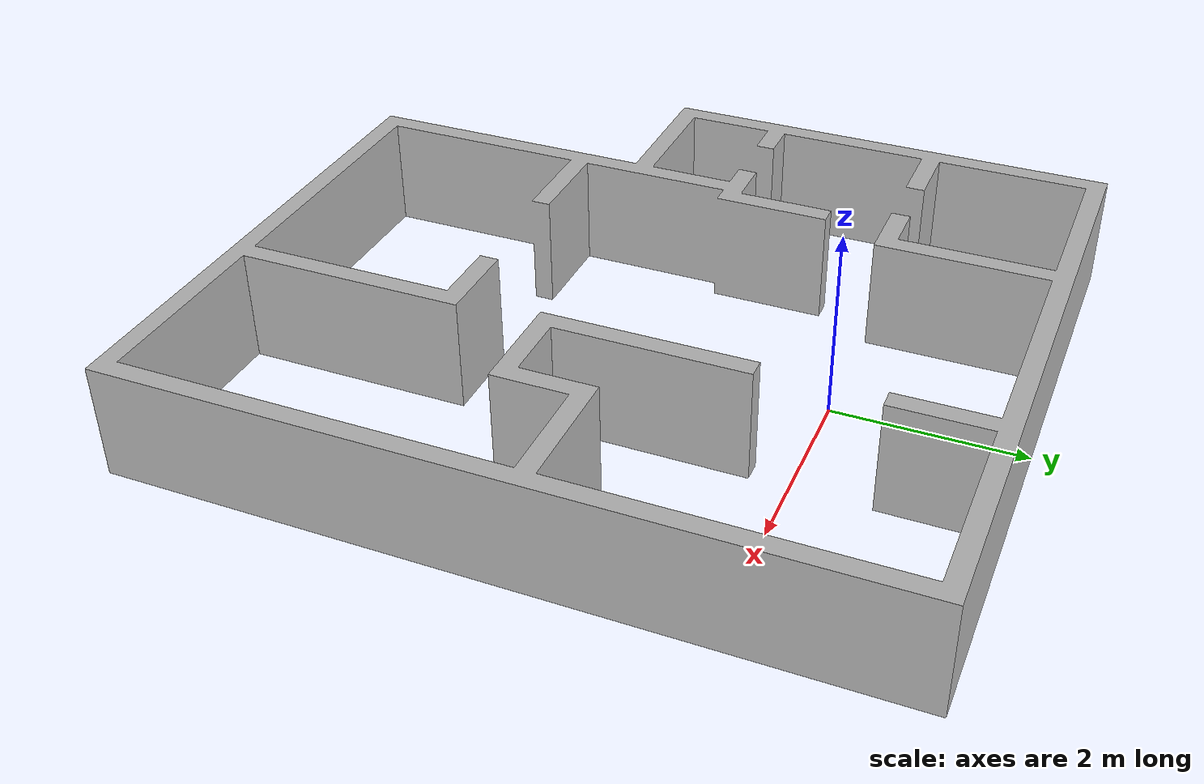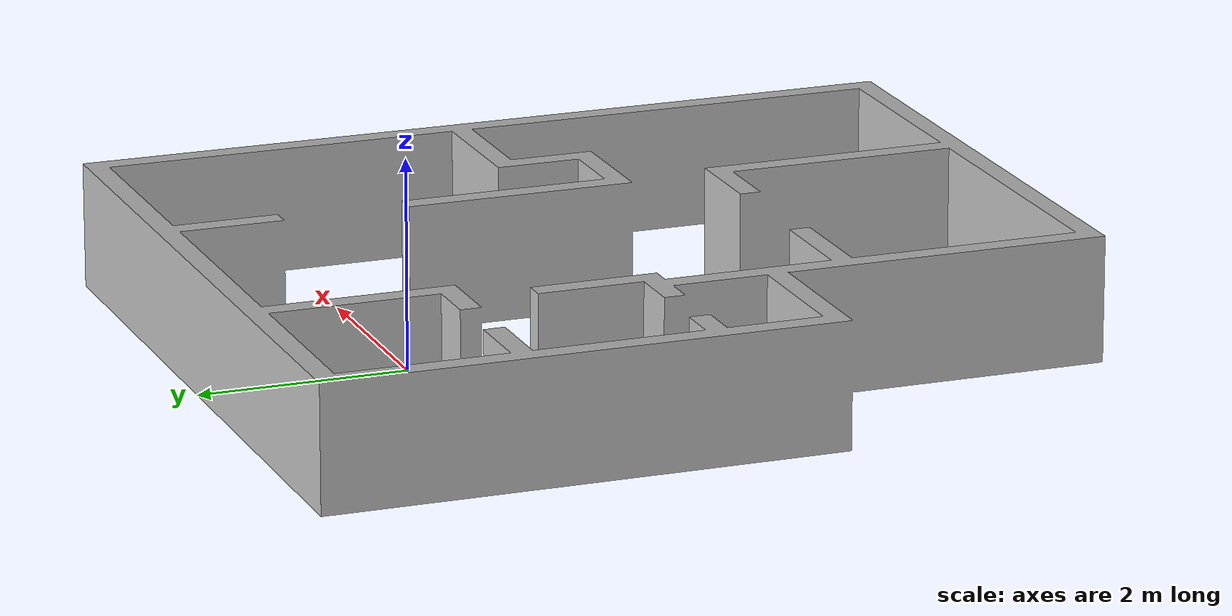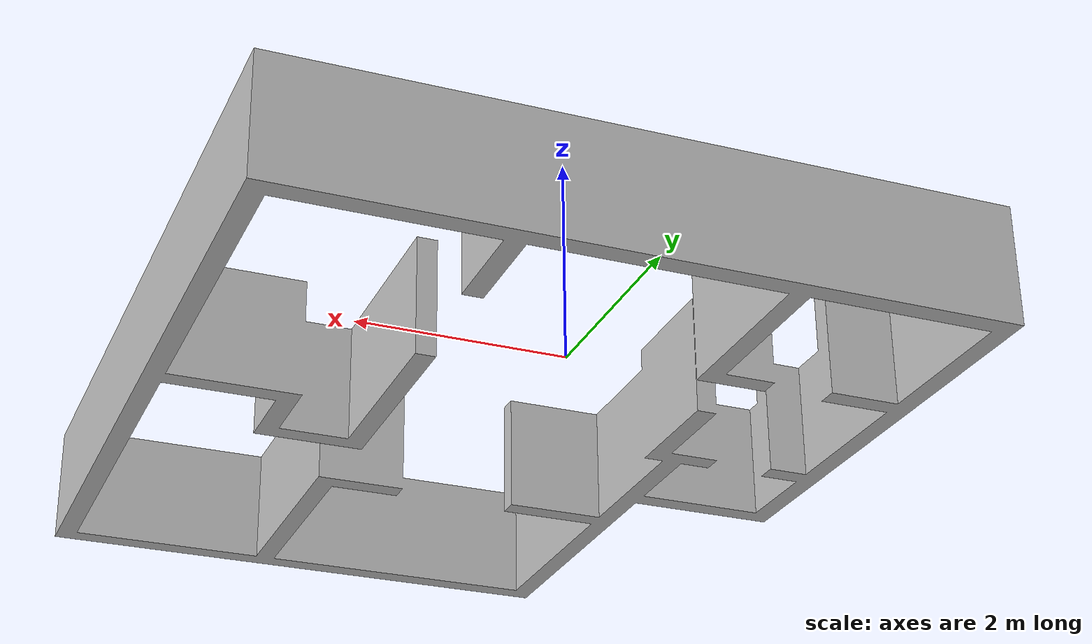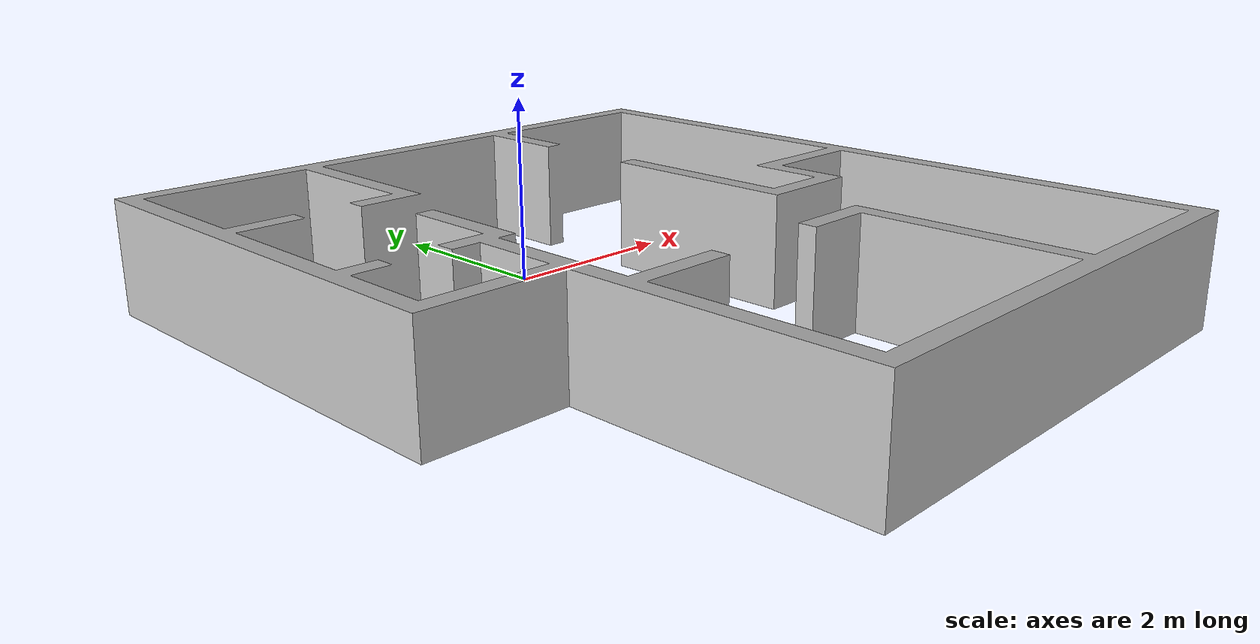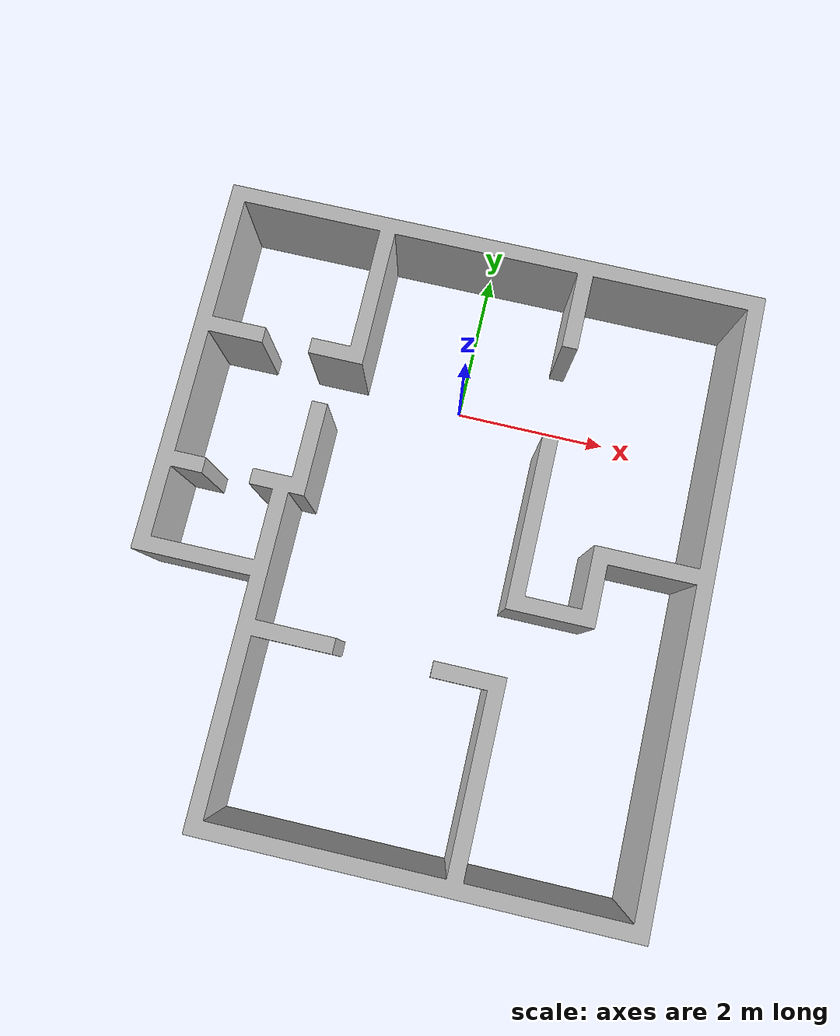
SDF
<?xml version='1.0'?>
<sdf version="1.4">
<model name="dummy_room">
  <pose>0 0 0 0 0 0</pose>
    <link name="link">
      <inertial>
        <mass>1.0</mass>
        <inertia>
          <ixx>0.083</ixx>
          <ixy>0.0</ixy>
          <ixz>0.0</ixz>
          <iyy>0.083</iyy>
          <iyz>0.0</iyz>
          <izz>0.083</izz>
        </inertia>
      </inertial>
      <collision name="collision">
        <geometry>
          <mesh>
            <uri>model://dummy_room/room.stl</uri>
          </mesh>
        </geometry>
      </collision>
      <visual name="visual">
        <geometry>
          <mesh>
            <uri>model://dummy_room/room.stl</uri>
          </mesh>
        </geometry>
      </visual>
    </link>
  </model>
</sdf>
